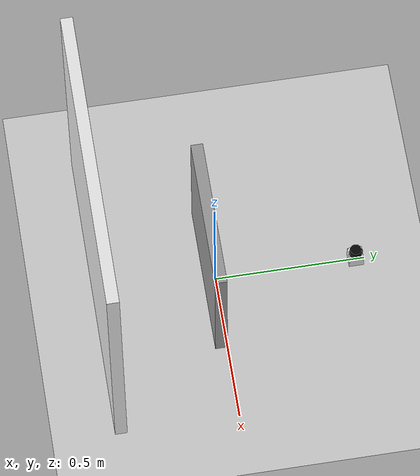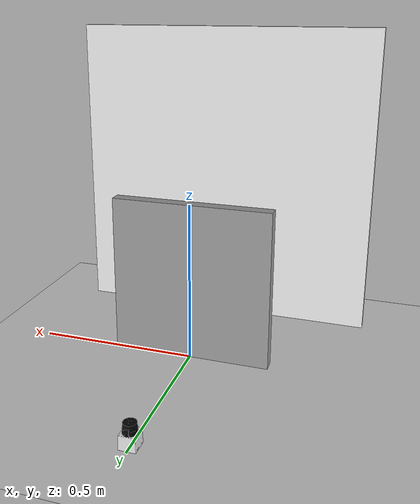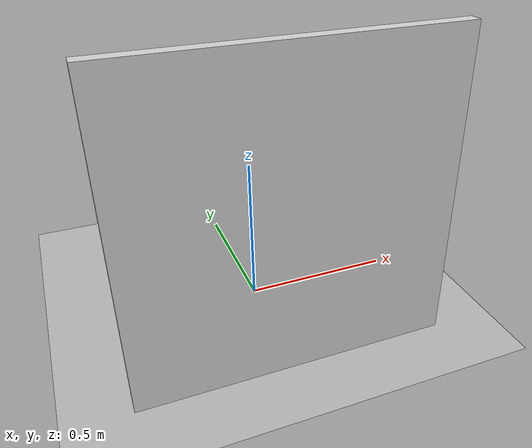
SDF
<sdf version="1.6">
 <world name="default">
  <light name="sun" type="directional">
   <pose>0 0 10 0 -0 0</pose>
   <diffuse>0.8 0.8 0.8 1</diffuse>
   <specular>0.2 0.2 0.2 1</specular>
   <attenuation>
    <range>1000</range>
    <constant>0.9</constant>
    <linear>0.01</linear>
    <quadratic>0.001</quadratic>
   </attenuation>
   <direction>-0.5 0.1 -0.9</direction>
  </light>
  <model name="ground_plane">
   <static>1</static>
   <link name="link">
    <collision name="collision">
     <geometry><plane><normal>0 0 1</normal><size>100 100</size></plane></geometry>
     <surface><friction><ode><mu>100</mu><mu2>50</mu2></ode></friction></surface>
    </collision>
    <visual name="visual">
     <cast_shadows>0</cast_shadows>
     <geometry><plane><normal>0 0 1</normal><size>100 100</size></plane></geometry>
     <material>
      <script><uri>file://media/materials/scripts/gazebo.material</uri><name>Gazebo/Grey</name></script>
     </material>
    </visual>
   </link>
  </model>
  <gravity>0 0 -9.8</gravity>
  <magnetic_field>6e-06 2.3e-05 -4.2e-05</magnetic_field>
  <atmosphere type="adiabatic"/>
  <physics name="default_physics" default="0" type="ode">
   <max_step_size>0.001</max_step_size>
   <real_time_factor>1</real_time_factor>
   <real_time_update_rate>1000</real_time_update_rate>
  </physics>
  <scene><ambient>0.4 0.4 0.4 1</ambient><background>0.7 0.7 0.7 1</background><shadows>1</shadows></scene>
  <spherical_coordinates>
   <surface_model>EARTH_WGS84</surface_model>
   <latitude_deg>0</latitude_deg>
   <longitude_deg>0</longitude_deg>
   <elevation>0</elevation>
   <heading_deg>0</heading_deg>
  </spherical_coordinates>
  <model name="material_model">
   <link name="link_0">
    <pose>0 0 0.25 0 -0 0</pose>
    <inertial>
     <mass>0.5</mass>
     <inertia>
      <ixx>0.00045008</ixx>
      <ixy>0</ixy>
      <ixz>0</ixz>
      <iyy>0.00098625</iyy>
      <iyz>0</iyz>
      <izz>0.00056019</izz>
     </inertia>
    </inertial>
    <gravity>0</gravity>
    <visual name="visual">
     <geometry><box><size>0.5 0.04 0.5</size></box></geometry>
     <material>
      <lighting>1</lighting>
      <script><uri>file://media/materials/scripts/gazebo.material</uri><name>Gazebo/Grey</name></script>
      <shader type="pixel"><normal_map>__default__</normal_map></shader>
      <ambient>0.3 0.3 0.3 1</ambient>
      <diffuse>0.7 0.7 0.7 1</diffuse>
      <specular>0.01 0.01 0.01 1</specular>
      <emissive>0 0 0 1</emissive>
     </material>
    </visual>
    <collision name="collision">
     <geometry><box><size>0.5 0.04 0.5</size></box></geometry>
     <surface>
      <friction>
       <ode><mu>1</mu><mu2>1</mu2><fdir1>0 0 0</fdir1><slip1>0</slip1><slip2>0</slip2></ode>
       <torsional>
        <coefficient>1</coefficient>
        <patch_radius>0</patch_radius>
        <surface_radius>0</surface_radius>
        <use_patch_radius>1</use_patch_radius>
        <ode><slip>0</slip></ode>
       </torsional>
      </friction>
      <bounce><restitution_coefficient>0</restitution_coefficient><threshold>1e+06</threshold></bounce>
      <contact>
       <collide_without_contact>0</collide_without_contact>
       <collide_without_contact_bitmask>1</collide_without_contact_bitmask>
       <collide_bitmask>1</collide_bitmask>
       <ode>
        <soft_cfm>0</soft_cfm>
        <soft_erp>0.2</soft_erp>
        <kp>1e+13</kp>
        <kd>1</kd>
        <max_vel>0.01</max_vel>
        <min_depth>0</min_depth>
       </ode>
       <bullet>
        <split_impulse>1</split_impulse>
        <split_impulse_penetration_threshold>-0.01</split_impulse_penetration_threshold>
        <soft_cfm>0</soft_cfm>
        <soft_erp>0.2</soft_erp>
        <kp>1e+13</kp>
        <kd>1</kd>
       </bullet>
      </contact>
     </surface>
    </collision>
   </link>
   <static>0</static>
   <pose>0 -0.02 0 0 -0 0</pose>
  </model>
  <model name="back_wall">
   <link name="link">
    <inertial>
     <mass>1</mass>
     <inertia>
      <ixx>0.166667</ixx>
      <ixy>0</ixy>
      <ixz>0</ixz>
      <iyy>0.166667</iyy>
      <iyz>0</iyz>
      <izz>0.166667</izz>
     </inertia>
    </inertial>
    <visual name="visual">
     <geometry><box><size>1 0.04 1</size></box></geometry>
     <material>
      <script><name>Gazebo/White</name><uri>file://media/materials/scripts/gazebo.material</uri></script>
      <shader type="pixel"><normal_map>__default__</normal_map></shader>
      <ambient>0.3 0.3 0.3 1</ambient>
      <diffuse>0.7 0.7 0.7 1</diffuse>
      <specular>0.01 0.01 0.01 1</specular>
      <emissive>0 0 0 1</emissive>
     </material>
    </visual>
    <collision name="collision">
     <geometry><box><size>1 0.04 1</size></box></geometry>
     <surface>
      <friction>
       <ode><mu>1</mu><mu2>1</mu2><fdir1>0 0 0</fdir1><slip1>0</slip1><slip2>0</slip2></ode>
       <torsional>
        <coefficient>1</coefficient>
        <patch_radius>0</patch_radius>
        <surface_radius>0</surface_radius>
        <use_patch_radius>1</use_patch_radius>
        <ode><slip>0</slip></ode>
       </torsional>
      </friction>
      <bounce><restitution_coefficient>0</restitution_coefficient><threshold>1e+06</threshold></bounce>
      <contact>
       <collide_without_contact>0</collide_without_contact>
       <collide_without_contact_bitmask>1</collide_without_contact_bitmask>
       <collide_bitmask>1</collide_bitmask>
       <ode>
        <soft_cfm>0</soft_cfm>
        <soft_erp>0.2</soft_erp>
        <kp>1e+13</kp>
        <kd>1</kd>
        <max_vel>0.01</max_vel>
        <min_depth>0</min_depth>
       </ode>
       <bullet>
        <split_impulse>1</split_impulse>
        <split_impulse_penetration_threshold>-0.01</split_impulse_penetration_threshold>
        <soft_cfm>0</soft_cfm>
        <soft_erp>0.2</soft_erp>
        <kp>1e+13</kp>
        <kd>1</kd>
       </bullet>
      </contact>
     </surface>
    </collision>
   </link>
   <static>0</static>
   <pose>0 -0.389999 0.5 -3e-06 0 0</pose>
  </model>
  <model name="hokuyo">
   <pose>-1e-06 0.47 0.035001 3.4e-05 2e-06 -1.57079</pose>
   <link name="link">
    <inertial>
     <mass>0.1</mass>
     <inertia><ixx>1</ixx><ixy>0</ixy><ixz>0</ixz><iyy>1</iyy><iyz>0</iyz><izz>1</izz></inertia>
    </inertial>
    <visual name="visual"><geometry><mesh><uri>model://hokuyo/meshes/hokuyo.dae</uri></mesh></geometry></visual>
    <collision name="collision-base">
     <pose>0 0 -0.0145 0 -0 0</pose>
     <geometry><box><size>0.05 0.05 0.041</size></box></geometry>
    </collision>
    <collision name="collision-top">
     <pose>0 0 0.0205 0 -0 0</pose>
     <geometry><cylinder><radius>0.021</radius><length>0.029</length></cylinder></geometry>
    </collision>
    <sensor name="laser" type="gpu_ray">
     <pose>0.01 0 0.0175 0 -0 0</pose>
     <ray>
      <scan>
       <horizontal>
        <samples>640</samples>
        <resolution>1</resolution>
        <min_angle>-0.7854</min_angle>
        <max_angle>0.7854</max_angle>
       </horizontal>
      </scan>
      <range><min>0.05</min><max>8</max><resolution>0.005</resolution></range>
      <noise><type>gaussian</type><mean>0.0</mean><stddev>0.0</stddev></noise>
     </ray>
     <plugin name="laser" filename="libGpuLaserCollisionPlugin.so">
      <path>/home/alex/wentz_catkin_ws/src/youbot_simulation/gpu_laser_collision_test/src/material.config</path>
      <MeanErr>0.05</MeanErr>
      <MeanErrPrefix>1</MeanErrPrefix>
      <Stddev>0.02</Stddev>
      <AlwaysGetHit>false</AlwaysGetHit>
      <MultiEcho>false</MultiEcho>
      <UseOriginalScanPercentage>0.0</UseOriginalScanPercentage>
      <TopicName>material_laser_scan</TopicName>
      <Frame>hokuyo</Frame>
     </plugin>
     <always_on>1</always_on>
     <update_rate>30</update_rate>
     <visualize>1</visualize>
    </sensor>
   </link>
  </model>
 </world>
</sdf>
